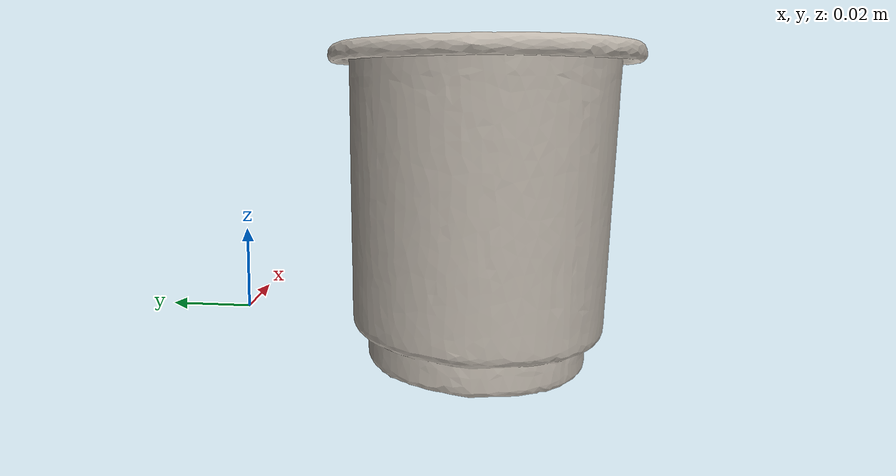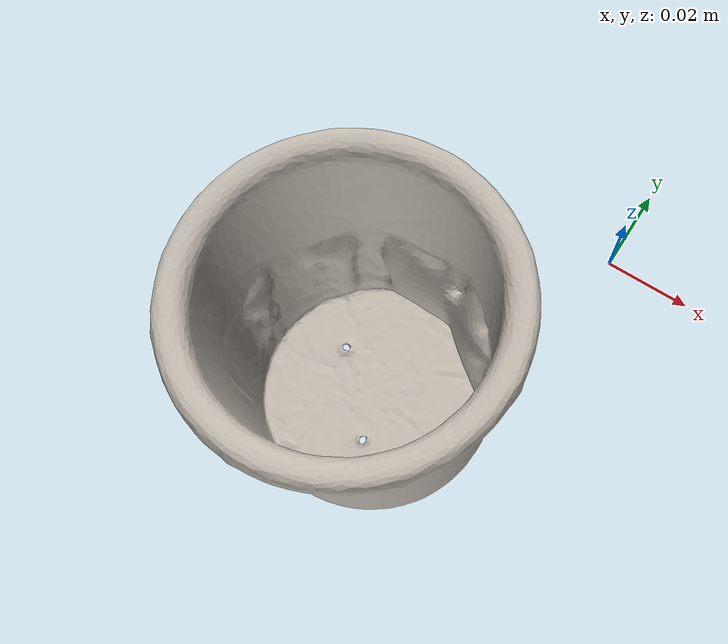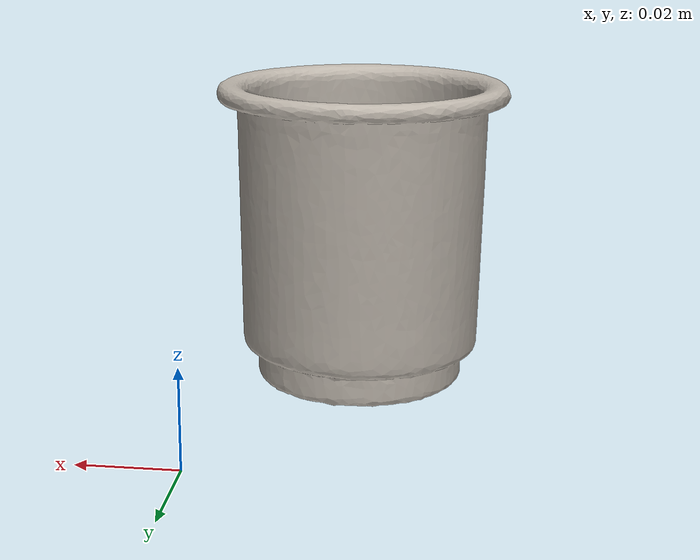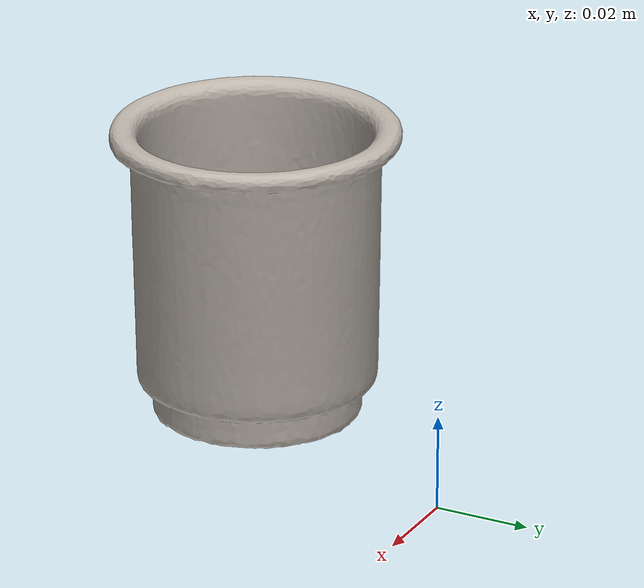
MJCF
<mujoco model="cups_b">
  <compiler angle="radian" meshdir="assets" texturedir="assets"/>
    <default>
        <default class="ycb_col">
            <geom contype="1" conaffinity="1" group="3" rgba=".4 .5 .6 1"/>
        </default>
        <default class="ycb_viz">
            <geom contype="0" conaffinity="0" type="mesh" mass="0"/>
        </default>
    </default>
  <asset>
    <texture type="2d" name="b_cups_tex" file="texture_map.png"/>
    <material name="b_cups_mat" texture="b_cups_tex" specular="0.5" shininess="0.5"/>
    <mesh file="textured.obj" name="b_cups"/>
    <mesh file="textured_collision_0.obj" name="b_cups_collision_0"/>
    <mesh file="textured_collision_1.obj" name="b_cups_collision_1"/>
    <mesh file="textured_collision_2.obj" name="b_cups_collision_2"/>
    <mesh file="textured_collision_3.obj" name="b_cups_collision_3"/>
    <mesh file="textured_collision_4.obj" name="b_cups_collision_4"/>
    <mesh file="textured_collision_5.obj" name="b_cups_collision_5"/>
    <mesh file="textured_collision_6.obj" name="b_cups_collision_6"/>
    <mesh file="textured_collision_7.obj" name="b_cups_collision_7"/>
    <mesh file="textured_collision_8.obj" name="b_cups_collision_8"/>
    <mesh file="textured_collision_9.obj" name="b_cups_collision_9"/>
    <mesh file="textured_collision_10.obj" name="b_cups_collision_10"/>
    <mesh file="textured_collision_11.obj" name="b_cups_collision_11"/>
    <mesh file="textured_collision_12.obj" name="b_cups_collision_12"/>
    <mesh file="textured_collision_13.obj" name="b_cups_collision_13"/>
    <mesh file="textured_collision_14.obj" name="b_cups_collision_14"/>
    <mesh file="textured_collision_15.obj" name="b_cups_collision_15"/>
    <mesh file="textured_collision_16.obj" name="b_cups_collision_16"/>
    <mesh file="textured_collision_17.obj" name="b_cups_collision_17"/>
    <mesh file="textured_collision_18.obj" name="b_cups_collision_18"/>
    <mesh file="textured_collision_19.obj" name="b_cups_collision_19"/>
    <mesh file="textured_collision_20.obj" name="b_cups_collision_20"/>
    <mesh file="textured_collision_21.obj" name="b_cups_collision_21"/>
    <mesh file="textured_collision_22.obj" name="b_cups_collision_22"/>
    <mesh file="textured_collision_23.obj" name="b_cups_collision_23"/>
    <mesh file="textured_collision_24.obj" name="b_cups_collision_24"/>
    <mesh file="textured_collision_25.obj" name="b_cups_collision_25"/>
    <mesh file="textured_collision_26.obj" name="b_cups_collision_26"/>
    <mesh file="textured_collision_27.obj" name="b_cups_collision_27"/>
    <mesh file="textured_collision_28.obj" name="b_cups_collision_28"/>
    <mesh file="textured_collision_29.obj" name="b_cups_collision_29"/>
    <mesh file="textured_collision_30.obj" name="b_cups_collision_30"/>
    <mesh file="textured_collision_31.obj" name="b_cups_collision_31"/>
    <mesh file="textured_collision_32.obj" name="b_cups_collision_32"/>
    <mesh file="textured_collision_33.obj" name="b_cups_collision_33"/>
    <mesh file="textured_collision_34.obj" name="b_cups_collision_34"/>
    <mesh file="textured_collision_35.obj" name="b_cups_collision_35"/>
    <mesh file="textured_collision_36.obj" name="b_cups_collision_36"/>
    <mesh file="textured_collision_37.obj" name="b_cups_collision_37"/>
    <mesh file="textured_collision_38.obj" name="b_cups_collision_38"/>
    <mesh file="textured_collision_39.obj" name="b_cups_collision_39"/>
    <mesh file="textured_collision_40.obj" name="b_cups_collision_40"/>
    <mesh file="textured_collision_41.obj" name="b_cups_collision_41"/>
    <mesh file="textured_collision_42.obj" name="b_cups_collision_42"/>
    <mesh file="textured_collision_43.obj" name="b_cups_collision_43"/>
    <mesh file="textured_collision_44.obj" name="b_cups_collision_44"/>
    <mesh file="textured_collision_45.obj" name="b_cups_collision_45"/>
    <mesh file="textured_collision_46.obj" name="b_cups_collision_46"/>
    <mesh file="textured_collision_47.obj" name="b_cups_collision_47"/>
  </asset>
  <worldbody>
      <geom material="b_cups_mat" mesh="b_cups" class="ycb_viz"/>
      <geom mesh="b_cups_collision_0" class="ycb_col" conaffinity="1" condim="4" friction="0.1 0.1 0.1" mass="7.692386201097258e-05" rgba="1 1 1 1" solimp="0.99 0.99 0.01" solref=".001 0.1" type="mesh" group="3"/>
      <geom mesh="b_cups_collision_1" class="ycb_col" conaffinity="1" condim="4" friction="0.1 0.1 0.1" mass="0.0001548935439273528" rgba="1 1 1 1" solimp="0.99 0.99 0.01" solref=".001 0.1" type="mesh" group="3"/>
      <geom mesh="b_cups_collision_2" class="ycb_col" conaffinity="1" condim="4" friction="0.1 0.1 0.1" mass="7.344822339797478e-05" rgba="1 1 1 1" solimp="0.99 0.99 0.01" solref=".001 0.1" type="mesh" group="3"/>
      <geom mesh="b_cups_collision_3" class="ycb_col" conaffinity="1" condim="4" friction="0.1 0.1 0.1" mass="0.00013445604106933413" rgba="1 1 1 1" solimp="0.99 0.99 0.01" solref=".001 0.1" type="mesh" group="3"/>
      <geom mesh="b_cups_collision_4" class="ycb_col" conaffinity="1" condim="4" friction="0.1 0.1 0.1" mass="8.597994014915473e-05" rgba="1 1 1 1" solimp="0.99 0.99 0.01" solref=".001 0.1" type="mesh" group="3"/>
      <geom mesh="b_cups_collision_5" class="ycb_col" conaffinity="1" condim="4" friction="0.1 0.1 0.1" mass="0.00012178027886505353" rgba="1 1 1 1" solimp="0.99 0.99 0.01" solref=".001 0.1" type="mesh" group="3"/>
      <geom mesh="b_cups_collision_6" class="ycb_col" conaffinity="1" condim="4" friction="0.1 0.1 0.1" mass="0.00011756038039988671" rgba="1 1 1 1" solimp="0.99 0.99 0.01" solref=".001 0.1" type="mesh" group="3"/>
      <geom mesh="b_cups_collision_7" class="ycb_col" conaffinity="1" condim="4" friction="0.1 0.1 0.1" mass="0.00010144911440231778" rgba="1 1 1 1" solimp="0.99 0.99 0.01" solref=".001 0.1" type="mesh" group="3"/>
      <geom mesh="b_cups_collision_8" class="ycb_col" conaffinity="1" condim="4" friction="0.1 0.1 0.1" mass="0.00044993672578365" rgba="1 1 1 1" solimp="0.99 0.99 0.01" solref=".001 0.1" type="mesh" group="3"/>
      <geom mesh="b_cups_collision_9" class="ycb_col" conaffinity="1" condim="4" friction="0.1 0.1 0.1" mass="0.0004427592258365926" rgba="1 1 1 1" solimp="0.99 0.99 0.01" solref=".001 0.1" type="mesh" group="3"/>
      <geom mesh="b_cups_collision_10" class="ycb_col" conaffinity="1" condim="4" friction="0.1 0.1 0.1" mass="0.00039661501446527924" rgba="1 1 1 1" solimp="0.99 0.99 0.01" solref=".001 0.1" type="mesh" group="3"/>
      <geom mesh="b_cups_collision_11" class="ycb_col" conaffinity="1" condim="4" friction="0.1 0.1 0.1" mass="0.0003055735963419341" rgba="1 1 1 1" solimp="0.99 0.99 0.01" solref=".001 0.1" type="mesh" group="3"/>
      <geom mesh="b_cups_collision_12" class="ycb_col" conaffinity="1" condim="4" friction="0.1 0.1 0.1" mass="0.00011430271357876048" rgba="1 1 1 1" solimp="0.99 0.99 0.01" solref=".001 0.1" type="mesh" group="3"/>
      <geom mesh="b_cups_collision_13" class="ycb_col" conaffinity="1" condim="4" friction="0.1 0.1 0.1" mass="0.00011796982998170131" rgba="1 1 1 1" solimp="0.99 0.99 0.01" solref=".001 0.1" type="mesh" group="3"/>
      <geom mesh="b_cups_collision_14" class="ycb_col" conaffinity="1" condim="4" friction="0.1 0.1 0.1" mass="0.0001031120015758497" rgba="1 1 1 1" solimp="0.99 0.99 0.01" solref=".001 0.1" type="mesh" group="3"/>
      <geom mesh="b_cups_collision_15" class="ycb_col" conaffinity="1" condim="4" friction="0.1 0.1 0.1" mass="0.00015474402201767342" rgba="1 1 1 1" solimp="0.99 0.99 0.01" solref=".001 0.1" type="mesh" group="3"/>
      <geom mesh="b_cups_collision_16" class="ycb_col" conaffinity="1" condim="4" friction="0.1 0.1 0.1" mass="0.00011951116035551104" rgba="1 1 1 1" solimp="0.99 0.99 0.01" solref=".001 0.1" type="mesh" group="3"/>
      <geom mesh="b_cups_collision_17" class="ycb_col" conaffinity="1" condim="4" friction="0.1 0.1 0.1" mass="0.00012051528832887257" rgba="1 1 1 1" solimp="0.99 0.99 0.01" solref=".001 0.1" type="mesh" group="3"/>
      <geom mesh="b_cups_collision_18" class="ycb_col" conaffinity="1" condim="4" friction="0.1 0.1 0.1" mass="0.00011266671318829765" rgba="1 1 1 1" solimp="0.99 0.99 0.01" solref=".001 0.1" type="mesh" group="3"/>
      <geom mesh="b_cups_collision_19" class="ycb_col" conaffinity="1" condim="4" friction="0.1 0.1 0.1" mass="0.00017280873132420949" rgba="1 1 1 1" solimp="0.99 0.99 0.01" solref=".001 0.1" type="mesh" group="3"/>
      <geom mesh="b_cups_collision_20" class="ycb_col" conaffinity="1" condim="4" friction="0.1 0.1 0.1" mass="7.063428117009628e-05" rgba="1 1 1 1" solimp="0.99 0.99 0.01" solref=".001 0.1" type="mesh" group="3"/>
      <geom mesh="b_cups_collision_21" class="ycb_col" conaffinity="1" condim="4" friction="0.1 0.1 0.1" mass="0.00012099287777328422" rgba="1 1 1 1" solimp="0.99 0.99 0.01" solref=".001 0.1" type="mesh" group="3"/>
      <geom mesh="b_cups_collision_22" class="ycb_col" conaffinity="1" condim="4" friction="0.1 0.1 0.1" mass="0.00018786452091200712" rgba="1 1 1 1" solimp="0.99 0.99 0.01" solref=".001 0.1" type="mesh" group="3"/>
      <geom mesh="b_cups_collision_23" class="ycb_col" conaffinity="1" condim="4" friction="0.1 0.1 0.1" mass="0.00016043333814361302" rgba="1 1 1 1" solimp="0.99 0.99 0.01" solref=".001 0.1" type="mesh" group="3"/>
      <geom mesh="b_cups_collision_24" class="ycb_col" conaffinity="1" condim="4" friction="0.1 0.1 0.1" mass="0.00010730395238926199" rgba="1 1 1 1" solimp="0.99 0.99 0.01" solref=".001 0.1" type="mesh" group="3"/>
      <geom mesh="b_cups_collision_25" class="ycb_col" conaffinity="1" condim="4" friction="0.1 0.1 0.1" mass="8.781364299314513e-05" rgba="1 1 1 1" solimp="0.99 0.99 0.01" solref=".001 0.1" type="mesh" group="3"/>
      <geom mesh="b_cups_collision_26" class="ycb_col" conaffinity="1" condim="4" friction="0.1 0.1 0.1" mass="0.0005494616432320781" rgba="1 1 1 1" solimp="0.99 0.99 0.01" solref=".001 0.1" type="mesh" group="3"/>
      <geom mesh="b_cups_collision_27" class="ycb_col" conaffinity="1" condim="4" friction="0.1 0.1 0.1" mass="0.0005540887193190243" rgba="1 1 1 1" solimp="0.99 0.99 0.01" solref=".001 0.1" type="mesh" group="3"/>
      <geom mesh="b_cups_collision_28" class="ycb_col" conaffinity="1" condim="4" friction="0.1 0.1 0.1" mass="0.0006017014885786623" rgba="1 1 1 1" solimp="0.99 0.99 0.01" solref=".001 0.1" type="mesh" group="3"/>
      <geom mesh="b_cups_collision_29" class="ycb_col" conaffinity="1" condim="4" friction="0.1 0.1 0.1" mass="0.0005253083188417352" rgba="1 1 1 1" solimp="0.99 0.99 0.01" solref=".001 0.1" type="mesh" group="3"/>
      <geom mesh="b_cups_collision_30" class="ycb_col" conaffinity="1" condim="4" friction="0.1 0.1 0.1" mass="0.0006960511424678716" rgba="1 1 1 1" solimp="0.99 0.99 0.01" solref=".001 0.1" type="mesh" group="3"/>
      <geom mesh="b_cups_collision_31" class="ycb_col" conaffinity="1" condim="4" friction="0.1 0.1 0.1" mass="0.0008719075333597368" rgba="1 1 1 1" solimp="0.99 0.99 0.01" solref=".001 0.1" type="mesh" group="3"/>
      <geom mesh="b_cups_collision_32" class="ycb_col" conaffinity="1" condim="4" friction="0.1 0.1 0.1" mass="0.000420414839876478" rgba="1 1 1 1" solimp="0.99 0.99 0.01" solref=".001 0.1" type="mesh" group="3"/>
      <geom mesh="b_cups_collision_33" class="ycb_col" conaffinity="1" condim="4" friction="0.1 0.1 0.1" mass="0.0007305478054409133" rgba="1 1 1 1" solimp="0.99 0.99 0.01" solref=".001 0.1" type="mesh" group="3"/>
      <geom mesh="b_cups_collision_34" class="ycb_col" conaffinity="1" condim="4" friction="0.1 0.1 0.1" mass="0.0004646323637170275" rgba="1 1 1 1" solimp="0.99 0.99 0.01" solref=".001 0.1" type="mesh" group="3"/>
      <geom mesh="b_cups_collision_35" class="ycb_col" conaffinity="1" condim="4" friction="0.1 0.1 0.1" mass="0.0008045668190565352" rgba="1 1 1 1" solimp="0.99 0.99 0.01" solref=".001 0.1" type="mesh" group="3"/>
      <geom mesh="b_cups_collision_36" class="ycb_col" conaffinity="1" condim="4" friction="0.1 0.1 0.1" mass="0.00016948479231470196" rgba="1 1 1 1" solimp="0.99 0.99 0.01" solref=".001 0.1" type="mesh" group="3"/>
      <geom mesh="b_cups_collision_37" class="ycb_col" conaffinity="1" condim="4" friction="0.1 0.1 0.1" mass="0.000677960266820576" rgba="1 1 1 1" solimp="0.99 0.99 0.01" solref=".001 0.1" type="mesh" group="3"/>
      <geom mesh="b_cups_collision_38" class="ycb_col" conaffinity="1" condim="4" friction="0.1 0.1 0.1" mass="0.0001116575809934309" rgba="1 1 1 1" solimp="0.99 0.99 0.01" solref=".001 0.1" type="mesh" group="3"/>
      <geom mesh="b_cups_collision_39" class="ycb_col" conaffinity="1" condim="4" friction="0.1 0.1 0.1" mass="4.111266548729654e-05" rgba="1 1 1 1" solimp="0.99 0.99 0.01" solref=".001 0.1" type="mesh" group="3"/>
      <geom mesh="b_cups_collision_40" class="ycb_col" conaffinity="1" condim="4" friction="0.1 0.1 0.1" mass="4.57598232571835e-05" rgba="1 1 1 1" solimp="0.99 0.99 0.01" solref=".001 0.1" type="mesh" group="3"/>
      <geom mesh="b_cups_collision_41" class="ycb_col" conaffinity="1" condim="4" friction="0.1 0.1 0.1" mass="9.223063134017818e-05" rgba="1 1 1 1" solimp="0.99 0.99 0.01" solref=".001 0.1" type="mesh" group="3"/>
      <geom mesh="b_cups_collision_42" class="ycb_col" conaffinity="1" condim="4" friction="0.1 0.1 0.1" mass="0.0005261855155122008" rgba="1 1 1 1" solimp="0.99 0.99 0.01" solref=".001 0.1" type="mesh" group="3"/>
      <geom mesh="b_cups_collision_43" class="ycb_col" conaffinity="1" condim="4" friction="0.1 0.1 0.1" mass="0.00033725676999553296" rgba="1 1 1 1" solimp="0.99 0.99 0.01" solref=".001 0.1" type="mesh" group="3"/>
      <geom mesh="b_cups_collision_44" class="ycb_col" conaffinity="1" condim="4" friction="0.1 0.1 0.1" mass="0.00010866853356636719" rgba="1 1 1 1" solimp="0.99 0.99 0.01" solref=".001 0.1" type="mesh" group="3"/>
      <geom mesh="b_cups_collision_45" class="ycb_col" conaffinity="1" condim="4" friction="0.1 0.1 0.1" mass="0.00022401721599803117" rgba="1 1 1 1" solimp="0.99 0.99 0.01" solref=".001 0.1" type="mesh" group="3"/>
      <geom mesh="b_cups_collision_46" class="ycb_col" conaffinity="1" condim="4" friction="0.1 0.1 0.1" mass="0.00036604458208846396" rgba="1 1 1 1" solimp="0.99 0.99 0.01" solref=".001 0.1" type="mesh" group="3"/>
      <geom mesh="b_cups_collision_47" class="ycb_col" conaffinity="1" condim="4" friction="0.1 0.1 0.1" mass="0.0008688919283541855" rgba="1 1 1 1" solimp="0.99 0.99 0.01" solref=".001 0.1" type="mesh" group="3"/>
  </worldbody>
</mujoco>
